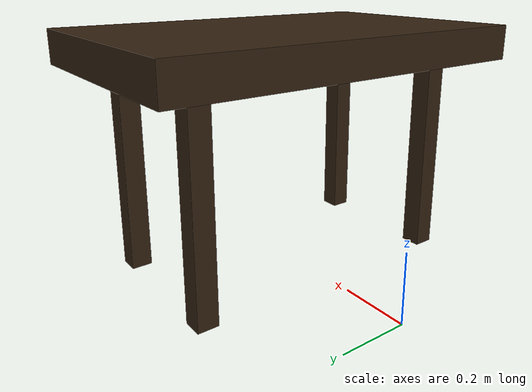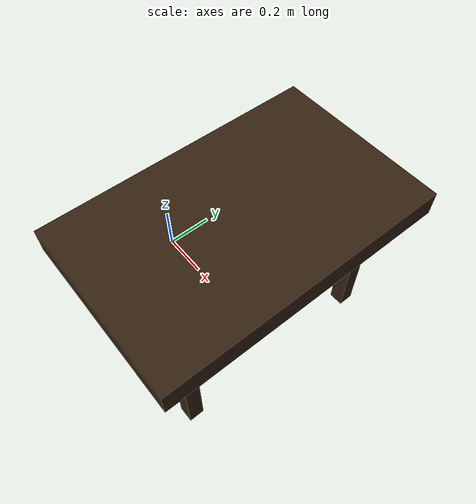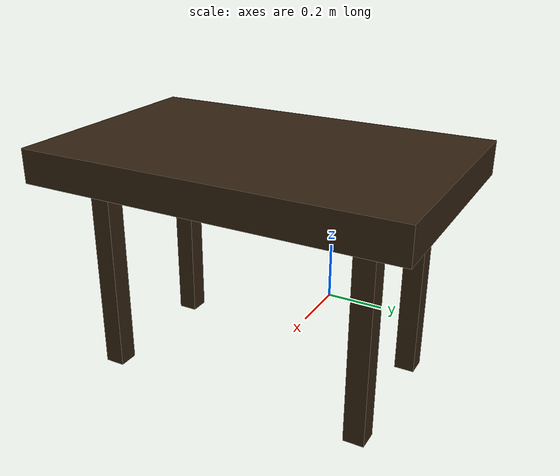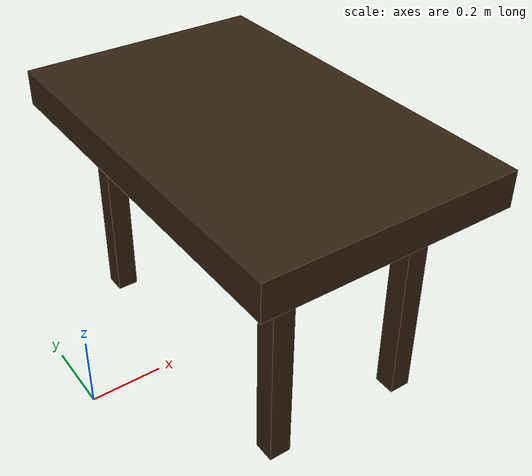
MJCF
<mujoco model="table">
  <compiler meshdir="F:/--CodeRepo/--CodeRepo/Research/___Mujoco/mujoco/mujoco/icse27/mujoco_rl_fuzz_2.0/.cache/repos/mujoco_mpc/mjpc/tasks/humanoid/interact/scenes" texturedir="F:/--CodeRepo/--CodeRepo/Research/___Mujoco/mujoco/mujoco/icse27/mujoco_rl_fuzz_2.0/.cache/repos/mujoco_mpc/mjpc/tasks/humanoid/interact/scenes" assetdir="F:/--CodeRepo/--CodeRepo/Research/___Mujoco/mujoco/mujoco/icse27/mujoco_rl_fuzz_2.0/.cache/repos/mujoco_mpc/mjpc/tasks/humanoid/interact/scenes"/><worldbody>
    <body name="table" pos="0.5 0 0.05" quat="0 0 1 0">
      <geom name="top" type="box" pos="0 0 -0.6" size=".35 .55 .05" mass="0.001" material="wood"/>
      <body name="leg" pos="0 0 0" quat="1 0 0 0">
        <geom name="table_leg_1" type="box" pos="-0.2 0.4 -0.27" size=".03 0.03 .32" mass="0.001" quat="0 1 0 0" material="wood"/>
        <geom name="table_leg_2" type="box" pos="0.2 -0.4 -0.27" size=".03 0.03 .32" mass="0.001" quat="0 1 0 0" material="wood"/>
        <geom name="table_leg_3" type="box" pos="0.2 0.4 -0.27" size=".03 0.03 .32" mass="0.001" quat="0 1 0 0" material="wood"/>
        <geom name="table_leg_4" type="box" pos="-0.2 -0.4 -0.27" size=".03 0.03 .32" mass="0.001" quat="0 1 0 0" material="wood"/>
      </body>
    </body>
  </worldbody>

  <asset>
    <material name="wood" rgba="0.20000  0.13333  0.06667 1"/>
  </asset>
</mujoco>
